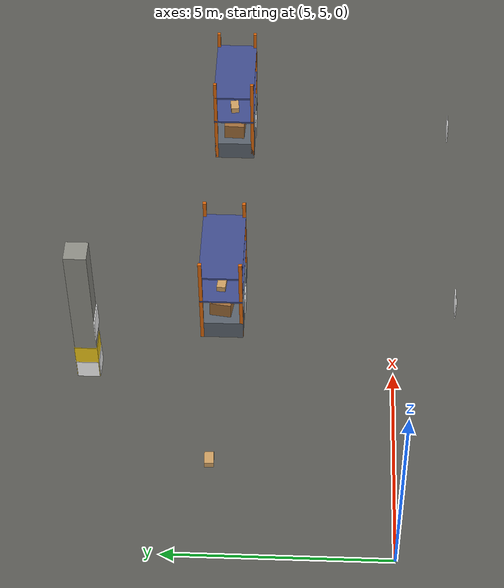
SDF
<sdf version="1.8">
 <world name="warehouse">
  <model name="ground_plane">
   <static>true</static>
   <link name="link">
    <collision name="collision">
     <geometry><plane><normal>0 0 1</normal><size>64 44</size></plane></geometry>
     <surface><friction><ode><mu>0.8</mu><mu2>0.8</mu2></ode></friction></surface>
    </collision>
    <visual name="visual">
     <geometry><plane><normal>0 0 1</normal><size>64 44</size></plane></geometry>
     <material>
      <ambient>0.35 0.35 0.33 1</ambient>
      <diffuse>0.35 0.35 0.33 1</diffuse>
      <specular>0.05 0.05 0.05 1</specular>
     </material>
    </visual>
   </link>
  </model>
  <include>
   <uri>model://pillar</uri>
   <name>pillar_2</name>
   <pose>10.0000 12.0000 0.0000 0.0000 0.0000 0.0000</pose>
  </include>
  <model name="pillar_2_marker_0">
   <static>true</static>
   <pose>10.2620 12.0000 0.0000 0.0000 0.0000 0.0000</pose>
   <link name="link">
    <collision name="plate_collision">
     <pose>0 0 0.250 0 0 0</pose>
     <geometry><box><size>0.02 0.50 0.50</size></box></geometry>
    </collision>
    <visual name="plate">
     <pose>0 0 0.250 0 0 0</pose>
     <geometry><box><size>0.02 0.50 0.50</size></box></geometry>
     <material>
      <ambient>1 1 1 1</ambient>
      <diffuse>1 1 1 1</diffuse>
      <specular>0.05 0.05 0.05 1</specular>
      <pbr>
       <metal>
        <albedo_map>model://dock_marker/materials/textures/aruco_4x4_100_14.png</albedo_map>
        <metalness>0.0</metalness>
        <roughness>0.9</roughness>
       </metal>
      </pbr>
     </material>
    </visual>
   </link>
  </model>
  <model name="pillar_2_marker_1">
   <static>true</static>
   <pose>9.7380 12.0000 0.0000 0.0000 0.0000 3.1416</pose>
   <link name="link">
    <collision name="plate_collision">
     <pose>0 0 0.250 0 0 0</pose>
     <geometry><box><size>0.02 0.50 0.50</size></box></geometry>
    </collision>
    <visual name="plate">
     <pose>0 0 0.250 0 0 0</pose>
     <geometry><box><size>0.02 0.50 0.50</size></box></geometry>
     <material>
      <ambient>1 1 1 1</ambient>
      <diffuse>1 1 1 1</diffuse>
      <specular>0.05 0.05 0.05 1</specular>
      <pbr>
       <metal>
        <albedo_map>model://dock_marker/materials/textures/aruco_4x4_100_15.png</albedo_map>
        <metalness>0.0</metalness>
        <roughness>0.9</roughness>
       </metal>
      </pbr>
     </material>
    </visual>
   </link>
  </model>
  <model name="pillar_2_marker_2">
   <static>true</static>
   <pose>10.0000 12.2620 0.0000 0.0000 0.0000 1.5708</pose>
   <link name="link">
    <collision name="plate_collision">
     <pose>0 0 0.250 0 0 0</pose>
     <geometry><box><size>0.02 0.50 0.50</size></box></geometry>
    </collision>
    <visual name="plate">
     <pose>0 0 0.250 0 0 0</pose>
     <geometry><box><size>0.02 0.50 0.50</size></box></geometry>
     <material>
      <ambient>1 1 1 1</ambient>
      <diffuse>1 1 1 1</diffuse>
      <specular>0.05 0.05 0.05 1</specular>
      <pbr>
       <metal>
        <albedo_map>model://dock_marker/materials/textures/aruco_4x4_100_16.png</albedo_map>
        <metalness>0.0</metalness>
        <roughness>0.9</roughness>
       </metal>
      </pbr>
     </material>
    </visual>
   </link>
  </model>
  <model name="pillar_2_marker_3">
   <static>true</static>
   <pose>10.0000 11.7380 0.0000 0.0000 0.0000 -1.5708</pose>
   <link name="link">
    <collision name="plate_collision">
     <pose>0 0 0.250 0 0 0</pose>
     <geometry><box><size>0.02 0.50 0.50</size></box></geometry>
    </collision>
    <visual name="plate">
     <pose>0 0 0.250 0 0 0</pose>
     <geometry><box><size>0.02 0.50 0.50</size></box></geometry>
     <material>
      <ambient>1 1 1 1</ambient>
      <diffuse>1 1 1 1</diffuse>
      <specular>0.05 0.05 0.05 1</specular>
      <pbr>
       <metal>
        <albedo_map>model://dock_marker/materials/textures/aruco_4x4_100_17.png</albedo_map>
        <metalness>0.0</metalness>
        <roughness>0.9</roughness>
       </metal>
      </pbr>
     </material>
    </visual>
   </link>
  </model>
  <model name="rack_marker_52">
   <static>true</static>
   <pose>12.0000 9.5120 0.0000 0.0000 0.0000 1.5708</pose>
   <link name="link">
    <collision name="plate_collision">
     <pose>0 0 0.250 0 0 0</pose>
     <geometry><box><size>0.02 0.50 0.50</size></box></geometry>
    </collision>
    <visual name="plate">
     <pose>0 0 0.250 0 0 0</pose>
     <geometry><box><size>0.02 0.50 0.50</size></box></geometry>
     <material>
      <ambient>1 1 1 1</ambient>
      <diffuse>1 1 1 1</diffuse>
      <specular>0.05 0.05 0.05 1</specular>
      <pbr>
       <metal>
        <albedo_map>model://dock_marker/materials/textures/aruco_4x4_100_52.png</albedo_map>
        <metalness>0.0</metalness>
        <roughness>0.9</roughness>
       </metal>
      </pbr>
     </material>
    </visual>
   </link>
  </model>
  <model name="rack_marker_53">
   <static>true</static>
   <pose>12.0000 8.4880 0.0000 0.0000 0.0000 -1.5708</pose>
   <link name="link">
    <collision name="plate_collision">
     <pose>0 0 0.250 0 0 0</pose>
     <geometry><box><size>0.02 0.50 0.50</size></box></geometry>
    </collision>
    <visual name="plate">
     <pose>0 0 0.250 0 0 0</pose>
     <geometry><box><size>0.02 0.50 0.50</size></box></geometry>
     <material>
      <ambient>1 1 1 1</ambient>
      <diffuse>1 1 1 1</diffuse>
      <specular>0.05 0.05 0.05 1</specular>
      <pbr>
       <metal>
        <albedo_map>model://dock_marker/materials/textures/aruco_4x4_100_53.png</albedo_map>
        <metalness>0.0</metalness>
        <roughness>0.9</roughness>
       </metal>
      </pbr>
     </material>
    </visual>
   </link>
  </model>
  <model name="rack_marker_54">
   <static>true</static>
   <pose>18.0000 9.5120 0.0000 0.0000 0.0000 1.5708</pose>
   <link name="link">
    <collision name="plate_collision">
     <pose>0 0 0.250 0 0 0</pose>
     <geometry><box><size>0.02 0.50 0.50</size></box></geometry>
    </collision>
    <visual name="plate">
     <pose>0 0 0.250 0 0 0</pose>
     <geometry><box><size>0.02 0.50 0.50</size></box></geometry>
     <material>
      <ambient>1 1 1 1</ambient>
      <diffuse>1 1 1 1</diffuse>
      <specular>0.05 0.05 0.05 1</specular>
      <pbr>
       <metal>
        <albedo_map>model://dock_marker/materials/textures/aruco_4x4_100_54.png</albedo_map>
        <metalness>0.0</metalness>
        <roughness>0.9</roughness>
       </metal>
      </pbr>
     </material>
    </visual>
   </link>
  </model>
  <model name="rack_marker_55">
   <static>true</static>
   <pose>18.0000 8.4880 0.0000 0.0000 0.0000 -1.5708</pose>
   <link name="link">
    <collision name="plate_collision">
     <pose>0 0 0.250 0 0 0</pose>
     <geometry><box><size>0.02 0.50 0.50</size></box></geometry>
    </collision>
    <visual name="plate">
     <pose>0 0 0.250 0 0 0</pose>
     <geometry><box><size>0.02 0.50 0.50</size></box></geometry>
     <material>
      <ambient>1 1 1 1</ambient>
      <diffuse>1 1 1 1</diffuse>
      <specular>0.05 0.05 0.05 1</specular>
      <pbr>
       <metal>
        <albedo_map>model://dock_marker/materials/textures/aruco_4x4_100_55.png</albedo_map>
        <metalness>0.0</metalness>
        <roughness>0.9</roughness>
       </metal>
      </pbr>
     </material>
    </visual>
   </link>
  </model>
  <model name="rack_marker_66">
   <static>true</static>
   <pose>12.0000 3.5120 0.0000 0.0000 0.0000 1.5708</pose>
   <link name="link">
    <collision name="plate_collision">
     <pose>0 0 0.250 0 0 0</pose>
     <geometry><box><size>0.02 0.50 0.50</size></box></geometry>
    </collision>
    <visual name="plate">
     <pose>0 0 0.250 0 0 0</pose>
     <geometry><box><size>0.02 0.50 0.50</size></box></geometry>
     <material>
      <ambient>1 1 1 1</ambient>
      <diffuse>1 1 1 1</diffuse>
      <specular>0.05 0.05 0.05 1</specular>
      <pbr>
       <metal>
        <albedo_map>model://dock_marker/materials/textures/aruco_4x4_100_66.png</albedo_map>
        <metalness>0.0</metalness>
        <roughness>0.9</roughness>
       </metal>
      </pbr>
     </material>
    </visual>
   </link>
  </model>
  <model name="rack_marker_68">
   <static>true</static>
   <pose>18.0000 3.5120 0.0000 0.0000 0.0000 1.5708</pose>
   <link name="link">
    <collision name="plate_collision">
     <pose>0 0 0.250 0 0 0</pose>
     <geometry><box><size>0.02 0.50 0.50</size></box></geometry>
    </collision>
    <visual name="plate">
     <pose>0 0 0.250 0 0 0</pose>
     <geometry><box><size>0.02 0.50 0.50</size></box></geometry>
     <material>
      <ambient>1 1 1 1</ambient>
      <diffuse>1 1 1 1</diffuse>
      <specular>0.05 0.05 0.05 1</specular>
      <pbr>
       <metal>
        <albedo_map>model://dock_marker/materials/textures/aruco_4x4_100_68.png</albedo_map>
        <metalness>0.0</metalness>
        <roughness>0.9</roughness>
       </metal>
      </pbr>
     </material>
    </visual>
   </link>
  </model>
  <include>
   <uri>model://rack</uri>
   <name>rack_A6</name>
   <pose>12.0000 9.0000 0.0000 0.0000 0.0000 0.0000</pose>
  </include>
  <include>
   <uri>model://rack</uri>
   <name>rack_A7</name>
   <pose>18.0000 9.0000 0.0000 0.0000 0.0000 0.0000</pose>
  </include>
  <include>
   <uri>model://box_small</uri>
   <name>rack_A5_box_small_3</name>
   <pose>6.5362 9.0000 1.2750 0.0000 0.0000 0.0232</pose>
   <static>true</static>
  </include>
  <include>
   <uri>model://box_large</uri>
   <name>rack_A6_box_large_0</name>
   <pose>11.5205 9.0000 0.5000 0.0000 0.0000 -0.1363</pose>
   <static>true</static>
  </include>
  <include>
   <uri>model://box_medium</uri>
   <name>rack_A6_box_medium_1</name>
   <pose>12.4728 9.0000 0.5000 0.0000 0.0000 -0.0632</pose>
   <static>true</static>
  </include>
  <include>
   <uri>model://box_small</uri>
   <name>rack_A6_box_small_2</name>
   <pose>11.4580 9.0000 1.2750 0.0000 0.0000 -0.0802</pose>
   <static>true</static>
  </include>
  <include>
   <uri>model://box_small</uri>
   <name>rack_A6_box_small_3</name>
   <pose>12.4601 9.0000 1.2750 0.0000 0.0000 -0.0666</pose>
   <static>true</static>
  </include>
  <include>
   <uri>model://box_large</uri>
   <name>rack_A7_box_large_0</name>
   <pose>17.5136 9.0000 0.5000 0.0000 0.0000 -0.0406</pose>
   <static>true</static>
  </include>
  <include>
   <uri>model://box_small</uri>
   <name>rack_A7_box_small_2</name>
   <pose>17.4767 9.0000 1.2750 0.0000 0.0000 0.1310</pose>
   <static>true</static>
  </include>
  <model name="sign_caution_forklift_2">
   <static>true</static>
   <pose>10.0000 11.7380 0.0000 0.0000 0.0000 -1.5708</pose>
   <link name="link">
    <visual name="plate">
     <pose>0 0 1.600 0 0 0</pose>
     <geometry><box><size>0.02 0.60 0.60</size></box></geometry>
     <material>
      <ambient>1 1 1 1</ambient>
      <diffuse>1 1 1 1</diffuse>
      <specular>0.05 0.05 0.05 1</specular>
      <pbr>
       <metal>
        <albedo_map>model://sign/materials/textures/sign_caution_forklift.png</albedo_map>
        <metalness>0.0</metalness>
        <roughness>0.9</roughness>
       </metal>
      </pbr>
     </material>
    </visual>
   </link>
  </model>
 </world>
</sdf>
